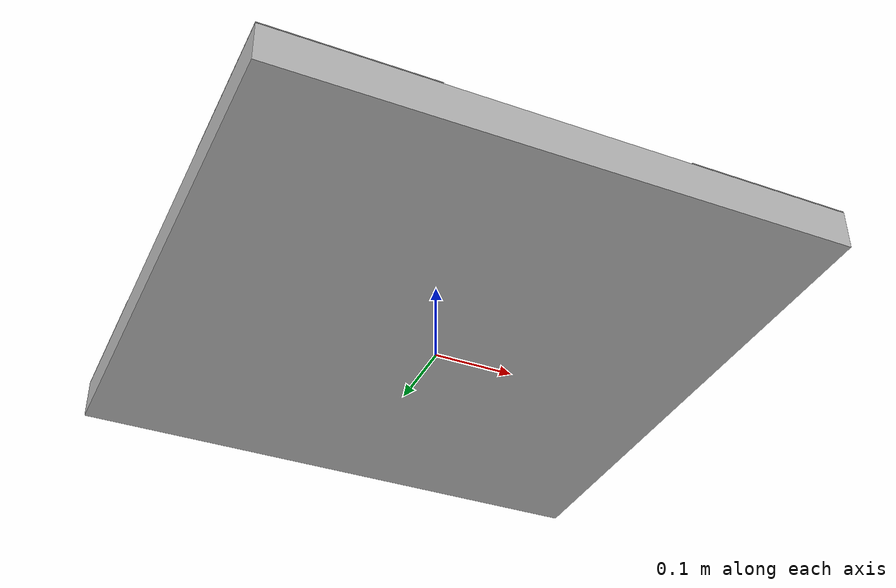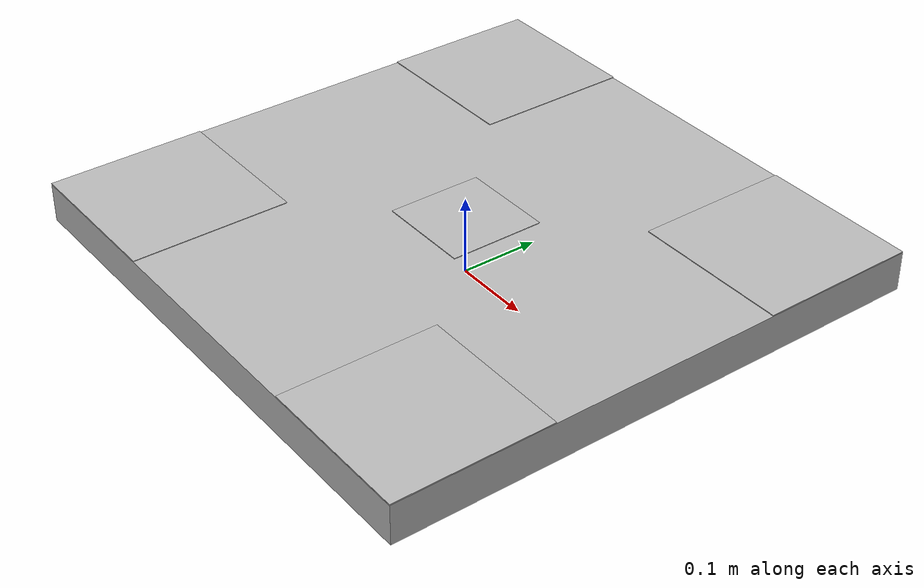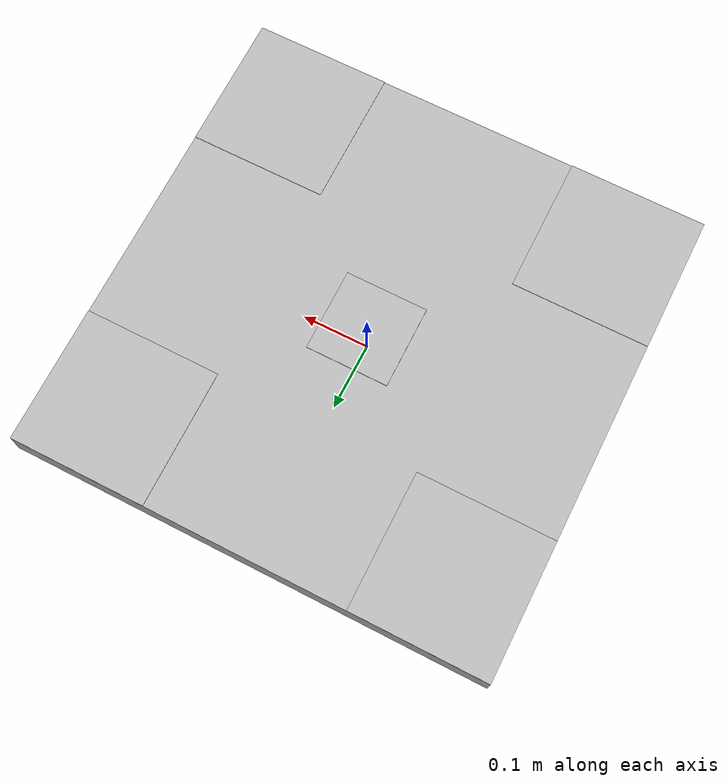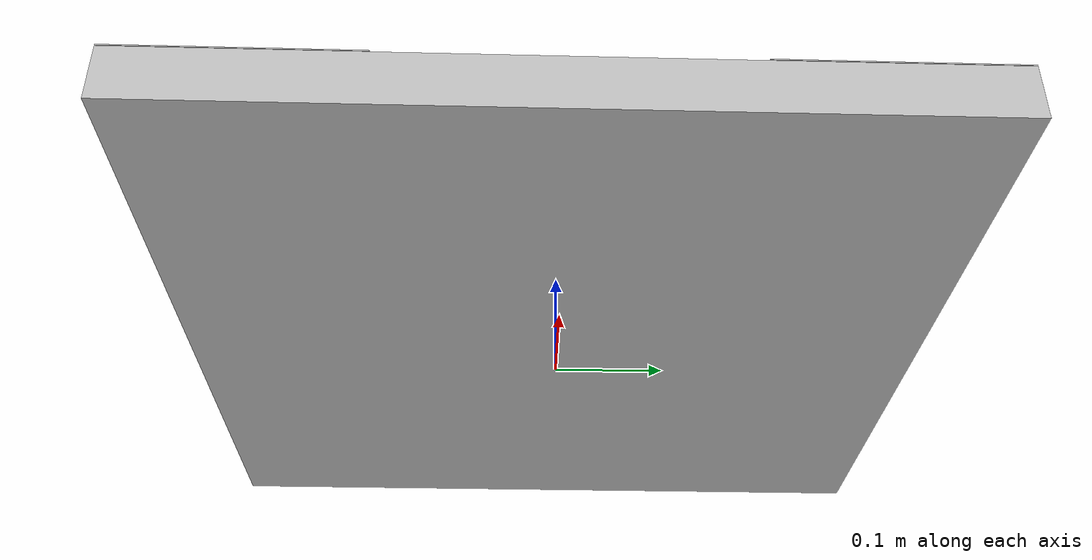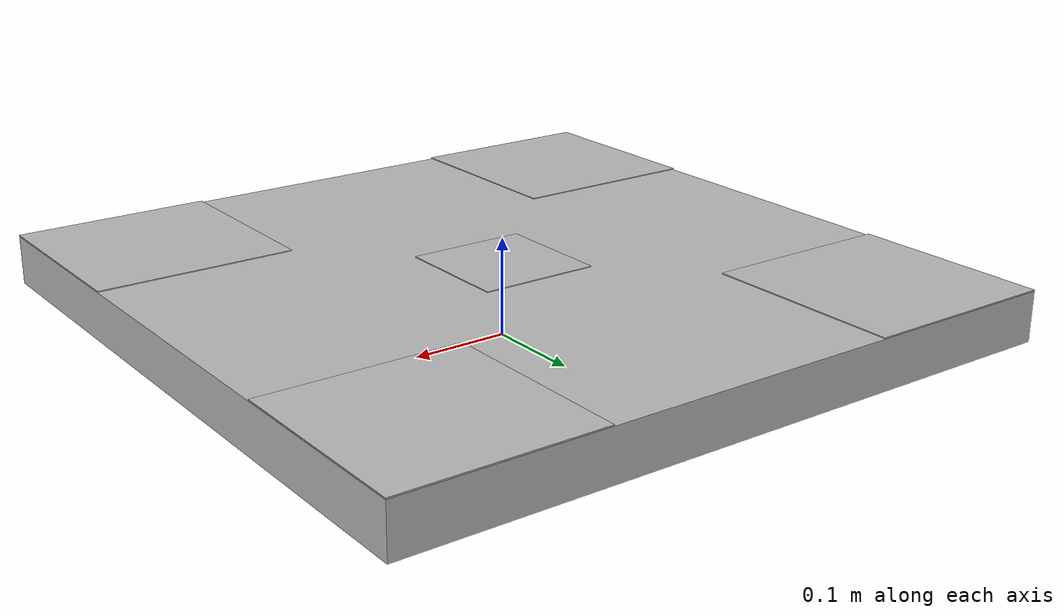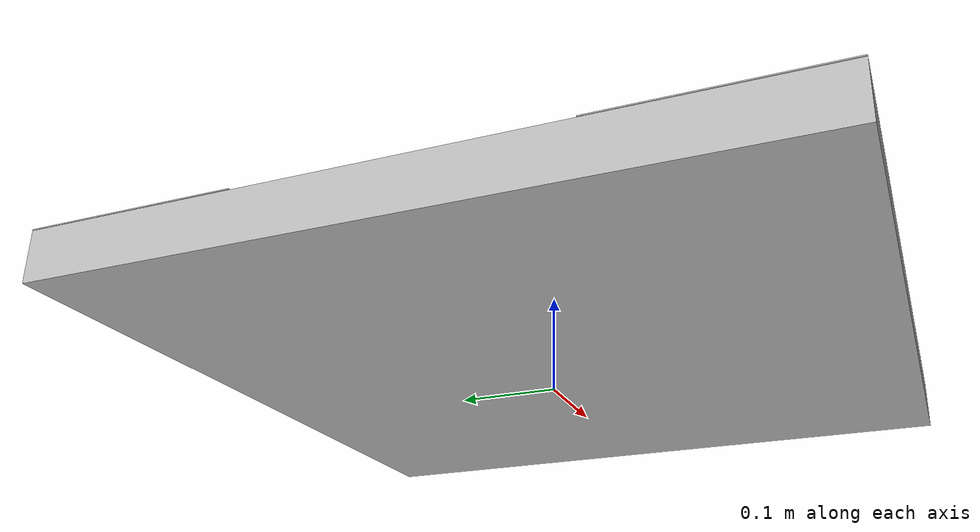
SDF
<?xml version='1.0'?>
<sdf version="1.4">
<model name="Landing_Site">
  <pose>0 0 0.05 0 0 0</pose> <!-- because simmetric -->
  <static>true</static>
    <link name="base_link">
      <inertial>
        <mass>1.0</mass>
        <inertia> <!-- inertias are tricky to compute -->
          <!-- http://gazebosim.org/tutorials?tut=inertia&cat=build_robot -->
          <ixx>0.083</ixx>       <!-- for a box: ixx = 0.083 * mass * (y*y + z*z) -->
          <ixy>0.0</ixy>         <!-- for a box: ixy = 0 -->
          <ixz>0.0</ixz>         <!-- for a box: ixz = 0 -->
          <iyy>0.083</iyy>       <!-- for a box: iyy = 0.083 * mass * (x*x + z*z) -->
          <iyz>0.0</iyz>         <!-- for a box: iyz = 0 -->
          <izz>0.083</izz>       <!-- for a box: izz = 0.083 * mass * (x*x + y*y) -->
        </inertia>
      </inertial>
      <collision name="collision_1">
        <geometry>
          <box>
            <size>0.7 0.7 0.05</size>
          </box>
        </geometry>
	<surface>
        <friction>
          <ode>
            <mu>1.5</mu>
            <mu2>1.5</mu2>
	    <slip1>100</slip1>
	    <slip2>100</slip2>
          </ode>
        </friction>
      </surface>

      </collision>
      <visual name="visual_1">
        <geometry>
          <box>
            <size>0.7 0.7 0.05</size>
          </box>
        </geometry>
      </visual>
    </link>

<!--0.26 relative distance from the center of the box's rectangle   -->

<model name="Tag0">
      <pose>0.24925 0.24925 0.026 0 0 0</pose>
      <static>true</static>
      <link name="link_Tag0">
      <pose>0 0 0 1.57 0 0</pose>
        <collision name="collision_00">
          <geometry>
            <box>
            <size>.2015 0.001 .2015</size>
            </box>
          </geometry>
        </collision>
        <visual name="visual_00">
        <cast_shadows>false</cast_shadows>
        <geometry>
          <box>
            <size>.2015 0.001 .2015</size>
          </box>
        </geometry>
        <material>
          <script>
            <uri>model://Landing_Site/Tag0/materials/scripts</uri>
            <uri>model://Landing_Site/Tag0/materials/textures</uri>
            <name>vrc/Tag0</name>
          </script>
        </material>
        </visual>
      </link>
    </model>

<model name="Tag1">
      <pose>-0.24925 0.24925 0.026 0 0 0</pose>
      <static>true</static>
      <link name="link_Tag1">
      <pose>0 0 0 1.57 0 0</pose>
        <collision name="collision_01">
          <geometry>
            <box>
            <size>.2015 0.001 .2015</size>
            </box>
          </geometry>
        </collision>
        <visual name="visual_01">
        <cast_shadows>false</cast_shadows>
        <geometry>
          <box>
            <size>.2015 0.001 .2015</size>
          </box>
        </geometry>
        <material>
          <script>
            <uri>model://Landing_Site/Tag1/materials/scripts</uri>
            <uri>model://Landing_Site/Tag1/materials/textures</uri>
            <name>vrc/Tag1</name>
          </script>
        </material>
        </visual>
      </link>
    </model>

    <model name="Tag2">
      <pose>0.24925 -0.24925 0.026 0 0 0</pose>
      <static>true</static>
      <link name="link_Tag2">
      <pose>0 0 0 1.57 0 0</pose>
        <collision name="collision_02">
          <geometry>
            <box>
            <size>.2015 0.001 .2015</size>
            </box>
          </geometry>
        </collision>
        <visual name="visual_02">
        <cast_shadows>false</cast_shadows>
        <geometry>
          <box>
            <size>.2015 0.001 .2015</size>
          </box>
        </geometry>
        <material>
          <script>
            <uri>model://Landing_Site/Tag2/materials/scripts</uri>
            <uri>model://Landing_Site/Tag2/materials/textures</uri>
            <name>vrc/Tag2</name>
          </script>
        </material>
        </visual>
      </link>
    </model>

    <model name="Tag3">
      <pose>-0.24925 -0.24925 0.026 0 0 0</pose>
      <static>true</static>
      <link name="link_Tag3">
      <pose>0 0 0 1.57 0 0</pose>
        <collision name="collision_03">
          <geometry>
            <box>
            <size>.2015 0.001 .2015</size>
            </box>
          </geometry>
        </collision>
        <visual name="visual_03">
        <cast_shadows>false</cast_shadows>
        <geometry>
          <box>
            <size>.2015 0.001 .2015</size>
          </box>
        </geometry>
        <material>
          <script>
            <uri>model://Landing_Site/Tag3/materials/scripts</uri>
            <uri>model://Landing_Site/Tag3/materials/textures</uri>
            <name>vrc/Tag3</name>
          </script>
        </material>
        </visual>
      </link>
    </model>

	<model name="Tag4">
      <pose>0.0 0.0 0.026 0 0 0</pose> <!--0.26 relative distance from the center of the box's rectangle   -->
      <static>true</static>
      <link name="link_Tag4">
      <pose>0 0 0 1.57 0 0</pose>
        <collision name="collision_04">
          <geometry>
            <box>
            <size>.1215 0.001 .1215</size>
            </box>
          </geometry>
        </collision>
        <visual name="visual_04">
        <cast_shadows>false</cast_shadows>
        <geometry>
          <box>
            <size>.1215 0.001 .1215</size>
          </box>
        </geometry>
        <material>
          <script>
            <uri>model://Landing_Site/Tag4/materials/scripts</uri>
            <uri>model://Landing_Site/Tag4/materials/textures</uri>
            <name>vrc/Tag4</name>
          </script>
        </material>
        </visual>
      </link>
    </model>

    <joint name="joint_tag0" type="fixed">
        <parent>base_link</parent>
        <child>Tag0::link_Tag0</child>
        <pose>0.0 0.0 0.0 0.0 0.0 0.0</pose>
        <axis>
          <xyz>1.0 0.0 0.0</xyz>
        </axis>
      </joint>

    <joint name="joint_tag1" type="fixed">
        <parent>base_link</parent>
        <child>Tag1::link_Tag1</child>
        <pose>0.0 0.0 0.0 0.0 0.0 0.0</pose>
        <axis>
          <xyz>1.0 0.0 0.0</xyz>
        </axis>
      </joint>

      <joint name="joint_tag2" type="fixed">
        <parent>base_link</parent>
        <child>Tag2::link_Tag2</child>
        <pose>0.0 0.0 0.0 0.0 0.0 0.0</pose>
        <axis>
          <xyz>1.0 0.0 0.0</xyz>
        </axis>
      </joint>

       <joint name="joint_tag3" type="fixed">
        <parent>base_link</parent>
        <child>Tag3::link_Tag3</child>
        <pose>0.0 0.0 0.0 0.0 0.0 0.0</pose>
        <axis>
          <xyz>1.0 0.0 0.0</xyz>
        </axis>
      </joint>

	<joint name="joint_tag4" type="fixed">
        <parent>base_link</parent>
        <child>Tag4::link_Tag4</child>
        <pose>0.0 0.0 0.0 0.0 0.0 0.0</pose>
        <axis>
          <xyz>1.0 0.0 0.0</xyz>
        </axis>
      </joint>

     <plugin name="plugin" filename="libplatformPlugin.so"/>

  </model>
  </sdf>
